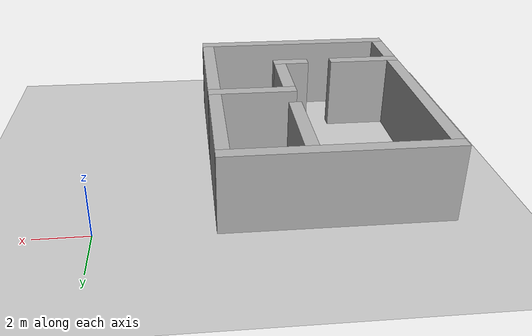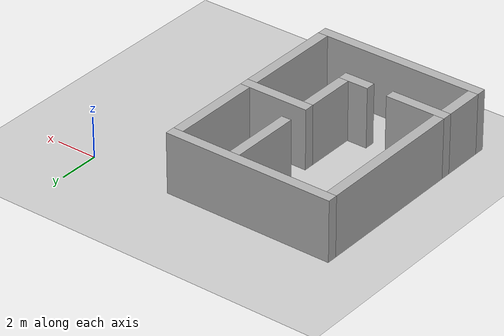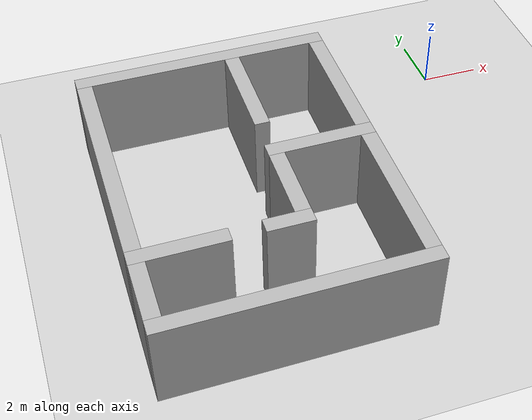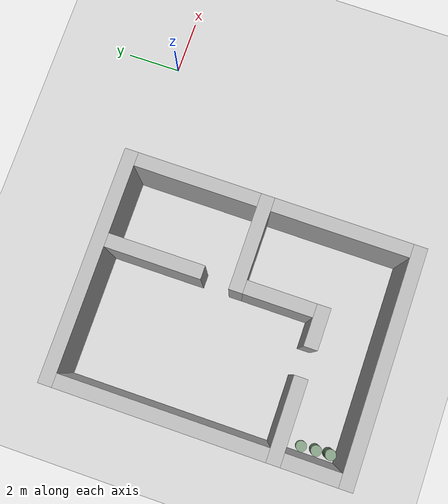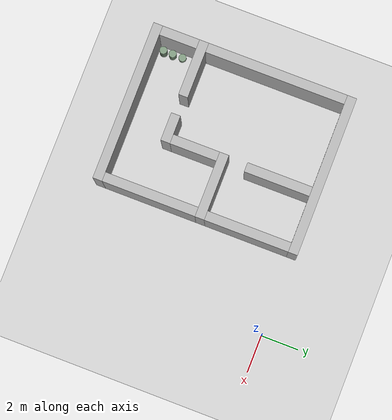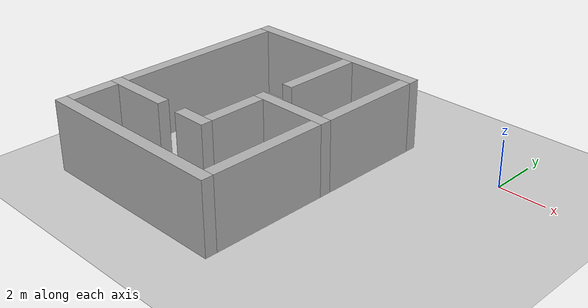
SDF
<sdf version="1.6">
 <world name="default">
  <light name="sun" type="directional">
   <cast_shadows>0</cast_shadows>
   <pose>0 0 10 0 -0 0</pose>
   <diffuse>0.8 0.8 0.8 1</diffuse>
   <specular>0.2 0.2 0.2 1</specular>
   <attenuation>
    <range>1000</range>
    <constant>0.9</constant>
    <linear>0.01</linear>
    <quadratic>0.001</quadratic>
   </attenuation>
   <direction>-0.5 0.1 -0.9</direction>
  </light>
  <include><uri>model://ground_plane</uri></include>
  <gravity>0 0 -9.8</gravity>
  <magnetic_field>6e-06 2.3e-05 -4.2e-05</magnetic_field>
  <atmosphere type="adiabatic"/>
  <physics name="default_physics" default="0" type="ode">
   <max_step_size>0.001</max_step_size>
   <real_time_factor>1</real_time_factor>
   <real_time_update_rate>1000</real_time_update_rate>
  </physics>
  <scene><ambient>0.4 0.4 0.4 1</ambient><background>0.7 0.7 0.7 1</background><shadows>0</shadows></scene>
  <spherical_coordinates>
   <surface_model>EARTH_WGS84</surface_model>
   <latitude_deg>0</latitude_deg>
   <longitude_deg>0</longitude_deg>
   <elevation>0</elevation>
   <heading_deg>0</heading_deg>
  </spherical_coordinates>
  <model name="wall_0">
   <pose frame="sim_world">-12.5 -9.25 1.5 0 0 0</pose>
   <static>True</static>
   <link name="wall_0_link">
    <inertial>
     <mass>100</mass>
     <inertia>
      <ixx>0.166667</ixx>
      <ixy>0</ixy>
      <ixz>0</ixz>
      <iyy>0.166667</iyy>
      <iyz>0</iyz>
      <izz>0.166667</izz>
     </inertia>
    </inertial>
    <collision name="wall_0_collision">
     <geometry><box><size>0.5 2.0 3.0</size></box></geometry>
     <max_contacts>100</max_contacts>
    </collision>
    <visual name="wall_0_visual">
     <geometry><box><size>0.5 2.0 3.0</size></box></geometry>
     <material><ambient>0.7 0.7 0.7 1</ambient><diffuse>0.7 0.7 0.7 1</diffuse></material>
    </visual>
   </link>
  </model>
  <model name="wall_1">
   <pose frame="sim_world">-12.5 -4.0 1.5 0 0 0</pose>
   <static>True</static>
   <link name="wall_1_link">
    <inertial>
     <mass>100</mass>
     <inertia>
      <ixx>0.166667</ixx>
      <ixy>0</ixy>
      <ixz>0</ixz>
      <iyy>0.166667</iyy>
      <iyz>0</iyz>
      <izz>0.166667</izz>
     </inertia>
    </inertial>
    <collision name="wall_1_collision">
     <geometry><box><size>0.5 7.5 3.0</size></box></geometry>
     <max_contacts>100</max_contacts>
    </collision>
    <visual name="wall_1_visual">
     <geometry><box><size>0.5 7.5 3.0</size></box></geometry>
     <material><ambient>0.7 0.7 0.7 1</ambient><diffuse>0.7 0.7 0.7 1</diffuse></material>
    </visual>
   </link>
  </model>
  <model name="wall_2">
   <pose frame="sim_world">-7.5 -6.5 1.5 0 0 0</pose>
   <static>True</static>
   <link name="wall_2_link">
    <inertial>
     <mass>100</mass>
     <inertia>
      <ixx>0.166667</ixx>
      <ixy>0</ixy>
      <ixz>0</ixz>
      <iyy>0.166667</iyy>
      <iyz>0</iyz>
      <izz>0.166667</izz>
     </inertia>
    </inertial>
    <collision name="wall_2_collision">
     <geometry><box><size>0.5 2.5 3.0</size></box></geometry>
     <max_contacts>100</max_contacts>
    </collision>
    <visual name="wall_2_visual">
     <geometry><box><size>0.5 2.5 3.0</size></box></geometry>
     <material><ambient>0.7 0.7 0.7 1</ambient><diffuse>0.7 0.7 0.7 1</diffuse></material>
    </visual>
   </link>
  </model>
  <model name="wall_3">
   <pose frame="sim_world">-7.5 -2.0 1.5 0 0 0</pose>
   <static>True</static>
   <link name="wall_3_link">
    <inertial>
     <mass>100</mass>
     <inertia>
      <ixx>0.166667</ixx>
      <ixy>0</ixy>
      <ixz>0</ixz>
      <iyy>0.166667</iyy>
      <iyz>0</iyz>
      <izz>0.166667</izz>
     </inertia>
    </inertial>
    <collision name="wall_3_collision">
     <geometry><box><size>0.5 3.5 3.0</size></box></geometry>
     <max_contacts>100</max_contacts>
    </collision>
    <visual name="wall_3_visual">
     <geometry><box><size>0.5 3.5 3.0</size></box></geometry>
     <material><ambient>0.7 0.7 0.7 1</ambient><diffuse>0.7 0.7 0.7 1</diffuse></material>
    </visual>
   </link>
  </model>
  <model name="wall_4">
   <pose frame="sim_world">-4.5 -7.75 1.5 0 0 0</pose>
   <static>True</static>
   <link name="wall_4_link">
    <inertial>
     <mass>100</mass>
     <inertia>
      <ixx>0.166667</ixx>
      <ixy>0</ixy>
      <ixz>0</ixz>
      <iyy>0.166667</iyy>
      <iyz>0</iyz>
      <izz>0.166667</izz>
     </inertia>
    </inertial>
    <collision name="wall_4_collision">
     <geometry><box><size>0.5 5.0 3.0</size></box></geometry>
     <max_contacts>100</max_contacts>
    </collision>
    <visual name="wall_4_visual">
     <geometry><box><size>0.5 5.0 3.0</size></box></geometry>
     <material><ambient>0.7 0.7 0.7 1</ambient><diffuse>0.7 0.7 0.7 1</diffuse></material>
    </visual>
   </link>
  </model>
  <model name="wall_5">
   <pose frame="sim_world">-4.5 -2.5 1.5 0 0 0</pose>
   <static>True</static>
   <link name="wall_5_link">
    <inertial>
     <mass>100</mass>
     <inertia>
      <ixx>0.166667</ixx>
      <ixy>0</ixy>
      <ixz>0</ixz>
      <iyy>0.166667</iyy>
      <iyz>0</iyz>
      <izz>0.166667</izz>
     </inertia>
    </inertial>
    <collision name="wall_5_collision">
     <geometry><box><size>0.5 4.5 3.0</size></box></geometry>
     <max_contacts>100</max_contacts>
    </collision>
    <visual name="wall_5_visual">
     <geometry><box><size>0.5 4.5 3.0</size></box></geometry>
     <material><ambient>0.7 0.7 0.7 1</ambient><diffuse>0.7 0.7 0.7 1</diffuse></material>
    </visual>
   </link>
  </model>
  <model name="wall_6">
   <pose frame="sim_world">-8.5 -10.5 1.5 0 0 0</pose>
   <static>True</static>
   <link name="wall_6_link">
    <inertial>
     <mass>100</mass>
     <inertia>
      <ixx>0.166667</ixx>
      <ixy>0</ixy>
      <ixz>0</ixz>
      <iyy>0.166667</iyy>
      <iyz>0</iyz>
      <izz>0.166667</izz>
     </inertia>
    </inertial>
    <collision name="wall_6_collision">
     <geometry><box><size>8.5 0.5 3.0</size></box></geometry>
     <max_contacts>100</max_contacts>
    </collision>
    <visual name="wall_6_visual">
     <geometry><box><size>8.5 0.5 3.0</size></box></geometry>
     <material><ambient>0.7 0.7 0.7 1</ambient><diffuse>0.7 0.7 0.7 1</diffuse></material>
    </visual>
   </link>
  </model>
  <model name="wall_7">
   <pose frame="sim_world">-11.25 -8.0 1.5 0 0 0</pose>
   <static>True</static>
   <link name="wall_7_link">
    <inertial>
     <mass>100</mass>
     <inertia>
      <ixx>0.166667</ixx>
      <ixy>0</ixy>
      <ixz>0</ixz>
      <iyy>0.166667</iyy>
      <iyz>0</iyz>
      <izz>0.166667</izz>
     </inertia>
    </inertial>
    <collision name="wall_7_collision">
     <geometry><box><size>3.0 0.5 3.0</size></box></geometry>
     <max_contacts>100</max_contacts>
    </collision>
    <visual name="wall_7_visual">
     <geometry><box><size>3.0 0.5 3.0</size></box></geometry>
     <material><ambient>0.7 0.7 0.7 1</ambient><diffuse>0.7 0.7 0.7 1</diffuse></material>
    </visual>
   </link>
  </model>
  <model name="wall_8">
   <pose frame="sim_world">-8.0 -8.0 1.5 0 0 0</pose>
   <static>True</static>
   <link name="wall_8_link">
    <inertial>
     <mass>100</mass>
     <inertia>
      <ixx>0.166667</ixx>
      <ixy>0</ixy>
      <ixz>0</ixz>
      <iyy>0.166667</iyy>
      <iyz>0</iyz>
      <izz>0.166667</izz>
     </inertia>
    </inertial>
    <collision name="wall_8_collision">
     <geometry><box><size>1.5 0.5 3.0</size></box></geometry>
     <max_contacts>100</max_contacts>
    </collision>
    <visual name="wall_8_visual">
     <geometry><box><size>1.5 0.5 3.0</size></box></geometry>
     <material><ambient>0.7 0.7 0.7 1</ambient><diffuse>0.7 0.7 0.7 1</diffuse></material>
    </visual>
   </link>
  </model>
  <model name="wall_9">
   <pose frame="sim_world">-6.0 -5.0 1.5 0 0 0</pose>
   <static>True</static>
   <link name="wall_9_link">
    <inertial>
     <mass>100</mass>
     <inertia>
      <ixx>0.166667</ixx>
      <ixy>0</ixy>
      <ixz>0</ixz>
      <iyy>0.166667</iyy>
      <iyz>0</iyz>
      <izz>0.166667</izz>
     </inertia>
    </inertial>
    <collision name="wall_9_collision">
     <geometry><box><size>3.5 0.5 3.0</size></box></geometry>
     <max_contacts>100</max_contacts>
    </collision>
    <visual name="wall_9_visual">
     <geometry><box><size>3.5 0.5 3.0</size></box></geometry>
     <material><ambient>0.7 0.7 0.7 1</ambient><diffuse>0.7 0.7 0.7 1</diffuse></material>
    </visual>
   </link>
  </model>
  <model name="wall_10">
   <pose frame="sim_world">-8.5 0.0 1.5 0 0 0</pose>
   <static>True</static>
   <link name="wall_10_link">
    <inertial>
     <mass>100</mass>
     <inertia>
      <ixx>0.166667</ixx>
      <ixy>0</ixy>
      <ixz>0</ixz>
      <iyy>0.166667</iyy>
      <iyz>0</iyz>
      <izz>0.166667</izz>
     </inertia>
    </inertial>
    <collision name="wall_10_collision">
     <geometry><box><size>8.5 0.5 3.0</size></box></geometry>
     <max_contacts>100</max_contacts>
    </collision>
    <visual name="wall_10_visual">
     <geometry><box><size>8.5 0.5 3.0</size></box></geometry>
     <material><ambient>0.7 0.7 0.7 1</ambient><diffuse>0.7 0.7 0.7 1</diffuse></material>
    </visual>
   </link>
  </model>
  <model name="cylinder_0">
   <pose frame="sim_world">-11.9525103878 -9.98168970104 0.15 0 -0 0</pose>
   <static>True</static>
   <link name="cylinder_0_link">
    <inertial>
     <mass>100</mass>
     <inertia><ixx>0.145833</ixx><ixy>0</ixy><ixz>0</ixz><iyy>0.145833</iyy><iyz>0</iyz><izz>0.125</izz></inertia>
    </inertial>
    <collision name="cylinder_0_collision">
     <geometry><cylinder><length>0.3</length><radius>0.2</radius></cylinder></geometry>
     <max_contacts>100</max_contacts>
    </collision>
    <visual name="cylinder_0_visual">
     <geometry><cylinder><length>0.3</length><radius>0.2</radius></cylinder></geometry>
     <material><ambient>0.5 0.6 0.5 1</ambient><diffuse>0.5 0.6 0.5 1</diffuse></material>
    </visual>
   </link>
  </model>
  <model name="cylinder_1">
   <pose frame="sim_world">-11.955569649 -9.98410720997 0.45 0 -0 0</pose>
   <static>True</static>
   <link name="cylinder_1_link">
    <inertial>
     <mass>100</mass>
     <inertia><ixx>0.145833</ixx><ixy>0</ixy><ixz>0</ixz><iyy>0.145833</iyy><iyz>0</iyz><izz>0.125</izz></inertia>
    </inertial>
    <collision name="cylinder_1_collision">
     <geometry><cylinder><length>0.3</length><radius>0.2</radius></cylinder></geometry>
     <max_contacts>100</max_contacts>
    </collision>
    <visual name="cylinder_1_visual">
     <geometry><cylinder><length>0.3</length><radius>0.2</radius></cylinder></geometry>
     <material><ambient>0.5 0.6 0.5 1</ambient><diffuse>0.5 0.6 0.5 1</diffuse></material>
    </visual>
   </link>
  </model>
  <model name="cylinder_2">
   <pose frame="sim_world">-11.9487445343 -9.98618072448 0.75 0 -0 0</pose>
   <static>True</static>
   <link name="cylinder_2_link">
    <inertial>
     <mass>100</mass>
     <inertia><ixx>0.145833</ixx><ixy>0</ixy><ixz>0</ixz><iyy>0.145833</iyy><iyz>0</iyz><izz>0.125</izz></inertia>
    </inertial>
    <collision name="cylinder_2_collision">
     <geometry><cylinder><length>0.3</length><radius>0.2</radius></cylinder></geometry>
     <max_contacts>100</max_contacts>
    </collision>
    <visual name="cylinder_2_visual">
     <geometry><cylinder><length>0.3</length><radius>0.2</radius></cylinder></geometry>
     <material><ambient>0.5 0.6 0.5 1</ambient><diffuse>0.5 0.6 0.5 1</diffuse></material>
    </visual>
   </link>
  </model>
  <model name="cylinder_3">
   <pose frame="sim_world">-11.9794393464 -9.48670227171 0.15 0 -0 0</pose>
   <static>True</static>
   <link name="cylinder_3_link">
    <inertial>
     <mass>100</mass>
     <inertia><ixx>0.145833</ixx><ixy>0</ixy><ixz>0</ixz><iyy>0.145833</iyy><iyz>0</iyz><izz>0.125</izz></inertia>
    </inertial>
    <collision name="cylinder_3_collision">
     <geometry><cylinder><length>0.3</length><radius>0.2</radius></cylinder></geometry>
     <max_contacts>100</max_contacts>
    </collision>
    <visual name="cylinder_3_visual">
     <geometry><cylinder><length>0.3</length><radius>0.2</radius></cylinder></geometry>
     <material><ambient>0.5 0.6 0.5 1</ambient><diffuse>0.5 0.6 0.5 1</diffuse></material>
    </visual>
   </link>
  </model>
  <model name="cylinder_4">
   <pose frame="sim_world">-11.9937114675 -9.49800487609 0.45 0 -0 0</pose>
   <static>True</static>
   <link name="cylinder_4_link">
    <inertial>
     <mass>100</mass>
     <inertia><ixx>0.145833</ixx><ixy>0</ixy><ixz>0</ixz><iyy>0.145833</iyy><iyz>0</iyz><izz>0.125</izz></inertia>
    </inertial>
    <collision name="cylinder_4_collision">
     <geometry><cylinder><length>0.3</length><radius>0.2</radius></cylinder></geometry>
     <max_contacts>100</max_contacts>
    </collision>
    <visual name="cylinder_4_visual">
     <geometry><cylinder><length>0.3</length><radius>0.2</radius></cylinder></geometry>
     <material><ambient>0.5 0.6 0.5 1</ambient><diffuse>0.5 0.6 0.5 1</diffuse></material>
    </visual>
   </link>
  </model>
  <model name="cylinder_5">
   <pose frame="sim_world">-12.0331117108 -8.97277409759 0.15 0 -0 0</pose>
   <static>True</static>
   <link name="cylinder_5_link">
    <inertial>
     <mass>100</mass>
     <inertia><ixx>0.145833</ixx><ixy>0</ixy><ixz>0</ixz><iyy>0.145833</iyy><iyz>0</iyz><izz>0.125</izz></inertia>
    </inertial>
    <collision name="cylinder_5_collision">
     <geometry><cylinder><length>0.3</length><radius>0.2</radius></cylinder></geometry>
     <max_contacts>100</max_contacts>
    </collision>
    <visual name="cylinder_5_visual">
     <geometry><cylinder><length>0.3</length><radius>0.2</radius></cylinder></geometry>
     <material><ambient>0.5 0.6 0.5 1</ambient><diffuse>0.5 0.6 0.5 1</diffuse></material>
    </visual>
   </link>
  </model>
  <include><uri>model://ground_plane</uri></include>
  <model name="ground_plane"><link name="ground_plane"/></model>
 </world>
</sdf>
